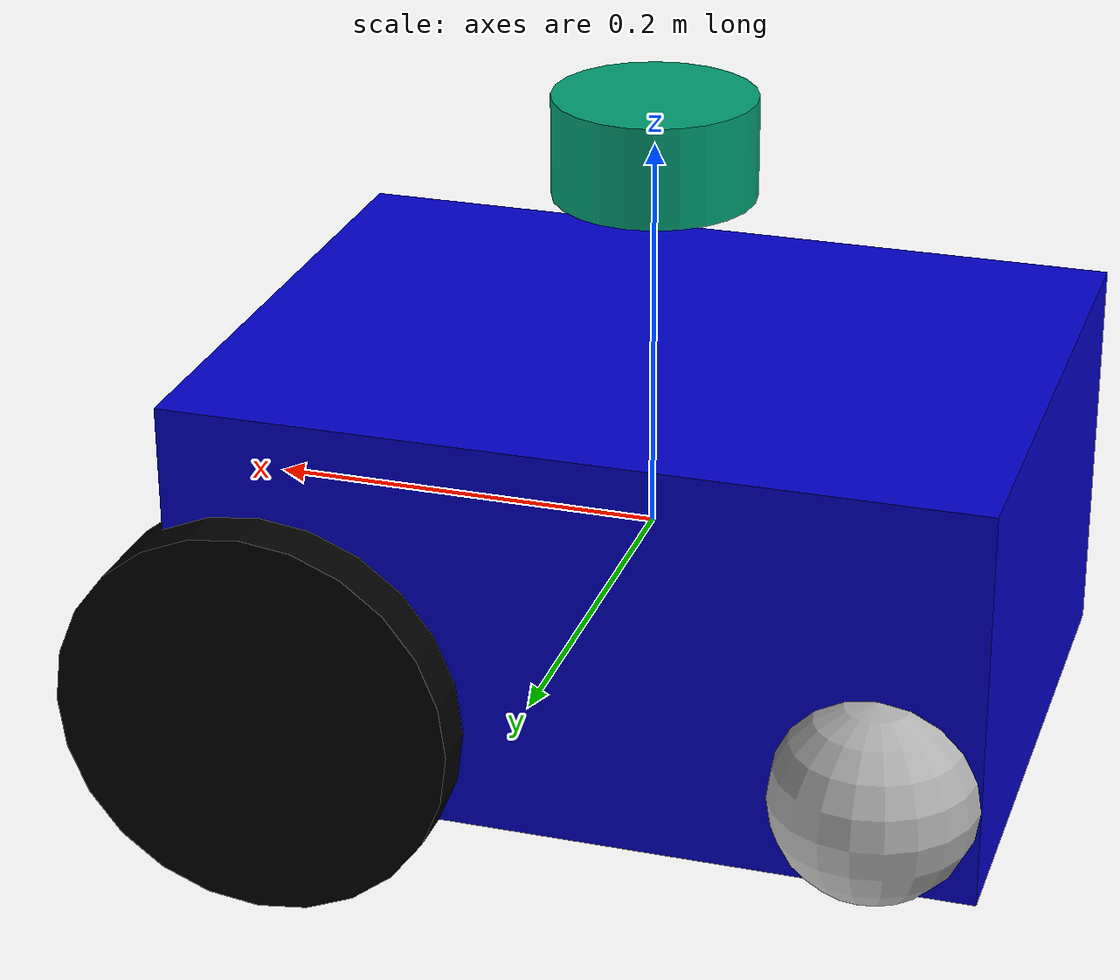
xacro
<?xml version="1.0"?>
<robot name="followbot" xmlns:xacro="http://www.ros.org/wiki/xacro">

  <!-- Base Footprint (virtual link for ground contact) -->
  <link name="base_footprint"/>

  <!-- Base Link (main body of the robot) -->
  <link name="base_link">
    <visual>
      <geometry>
        <box size="0.4 0.3 0.2"/> <!-- body size -->
      </geometry>
      <material name="blue">
        <color rgba="0 0 0.8 1"/>
      </material>
    </visual>
  </link>

  <!-- Joint: Base Footprint to Base Link -->
  <joint name="base_footprint_to_base_link" type="fixed">
    <parent link="base_link"/>
    <child link="base_footprint"/>
    <origin xyz="0 0 -0.1" rpy="0 0 0"/> <!-- 0.1m above footprint -->
  </joint>

  <!-- LiDAR -->
  <link name="base_scan">
    <visual>
      <geometry>
        <cylinder length="0.05" radius="0.05"/> <!-- simple cylinder -->
      </geometry>
    </visual>
  </link>

  <joint name="base_link_to_lidar" type="fixed">
    <parent link="base_link"/>
    <child link="base_scan"/>
    <origin xyz="0 0 0.2" rpy="0 0 0"/> <!-- LiDAR mounted 0.2m above base -->
  </joint>

  <!-- IMU -->
  <link name="imu_link"/>

  <joint name="base_link_to_imu" type="fixed">
    <parent link="base_link"/>
    <child link="imu_link"/>
    <origin xyz="0 0 0.1" rpy="0 0 0"/> <!-- IMU position relative to base -->
  </joint>

  <!-- GPS -->
  <link name="gps_link"/>

  <joint name="base_link_to_gps" type="fixed">
    <parent link="base_link"/>
    <child link="gps_link"/>
    <origin xyz="0 0 0.3" rpy="0 0 0"/> <!-- GPS antenna on top -->
  </joint>

  <!--         Driven Wheels (Encoders)   -->

  <!-- Left Wheel -->
  <link name="left_wheel">
    <visual>
      <geometry>
        <cylinder length="0.05" radius="0.1"/> <!-- wheel dimensions -->
      </geometry>
      <material name="black">
        <color rgba="0 0 0 1"/>
      </material>
    </visual>
  </link>

  <joint name="left_wheel_joint" type="continuous">
    <parent link="base_link"/>
    <child link="left_wheel"/>
    <origin xyz="0.15 0.15 -0.05" rpy="${pi/2} 0 0"/> <!-- position relative to base -->
    <axis xyz="0 1 0"/> <!-- rotate around y-axis -->
  </joint>

  <!-- Right Wheel -->
  <link name="right_wheel">
    <visual>
      <geometry>
        <cylinder length="0.05" radius="0.1"/>
      </geometry>
      <material name="black"/>
    </visual>
  </link>

  <joint name="right_wheel_joint" type="continuous">
    <parent link="base_link"/>
    <child link="right_wheel"/>
    <origin xyz="0.15 -0.15 -0.05" rpy="${pi/2} 0 0"/> <!-- mirrored y-position -->
    <axis xyz="0 1 0"/>
  </joint>

  <!--  Caster Wheels (no encoder)  -->

  <!-- Left Caster Wheel -->
  <link name="left_caster">
    <visual>
      <geometry>
        <sphere radius="0.05"/> <!-- simple sphere for visualization -->
      </geometry>
    </visual>
  </link>

  <joint name="left_caster_joint" type="fixed">
    <parent link="base_link"/>
    <child link="left_caster"/>
    <!-- positioned FORWARD on the left side (TODO: adjust x to robot's design) -->
    <origin xyz="-0.15 0.15 -0.05" rpy="0 0 0"/>
  </joint>

  <!-- Right Caster Wheel (passive, no encoder) -->
  <link name="right_caster">
    <visual>
      <geometry>
        <sphere radius="0.05"/>
      </geometry>
    </visual>
  </link>

  <joint name="right_caster_joint" type="fixed">
    <parent link="base_link"/>
    <child link="right_caster"/>
    <!-- Positioned FORWARD on the right side -->
    <origin xyz="-0.15 -0.15 -0.05" rpy="0 0 0"/>
  </joint>

</robot>
